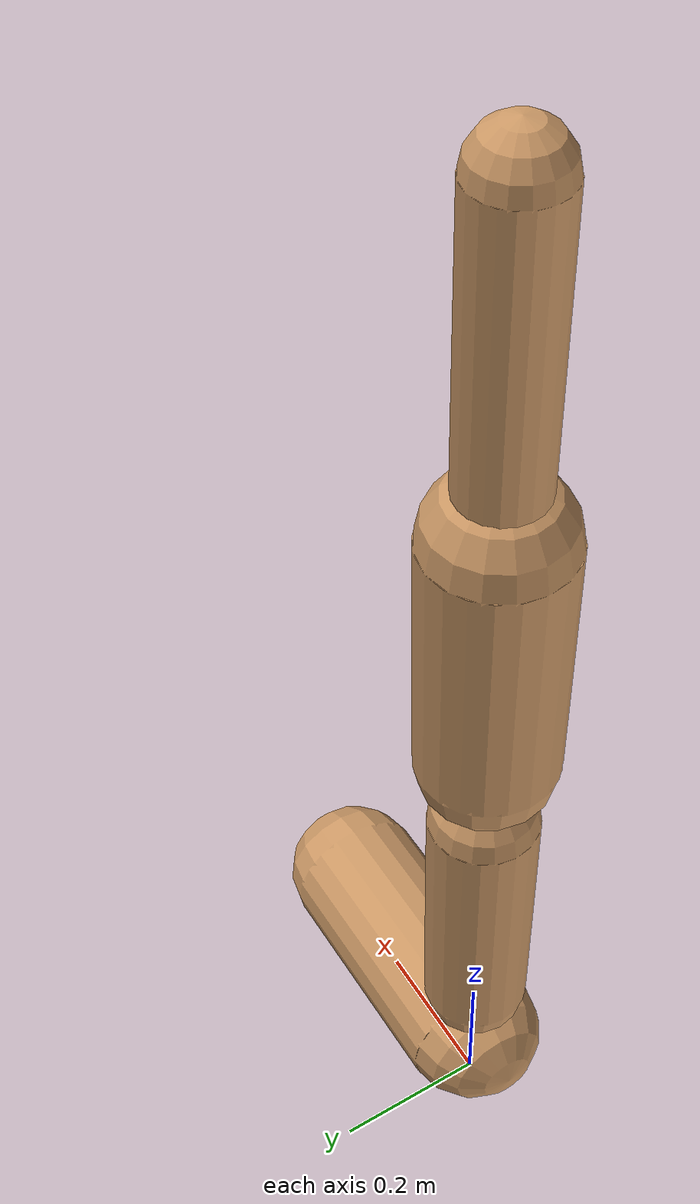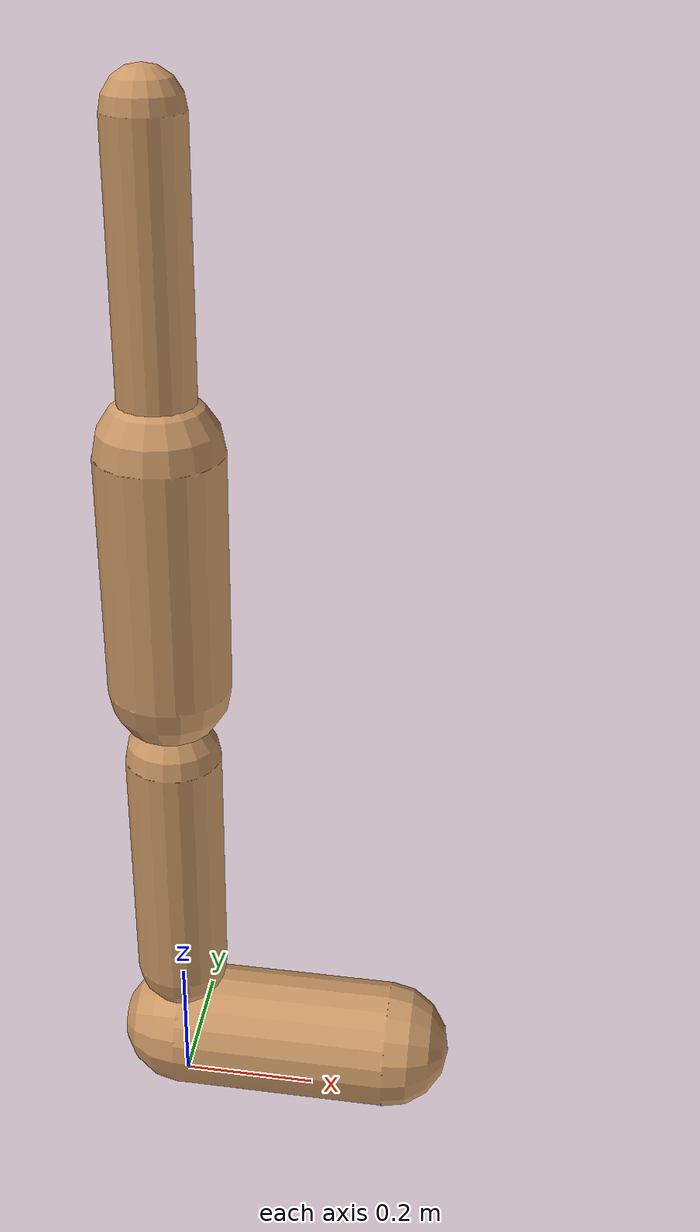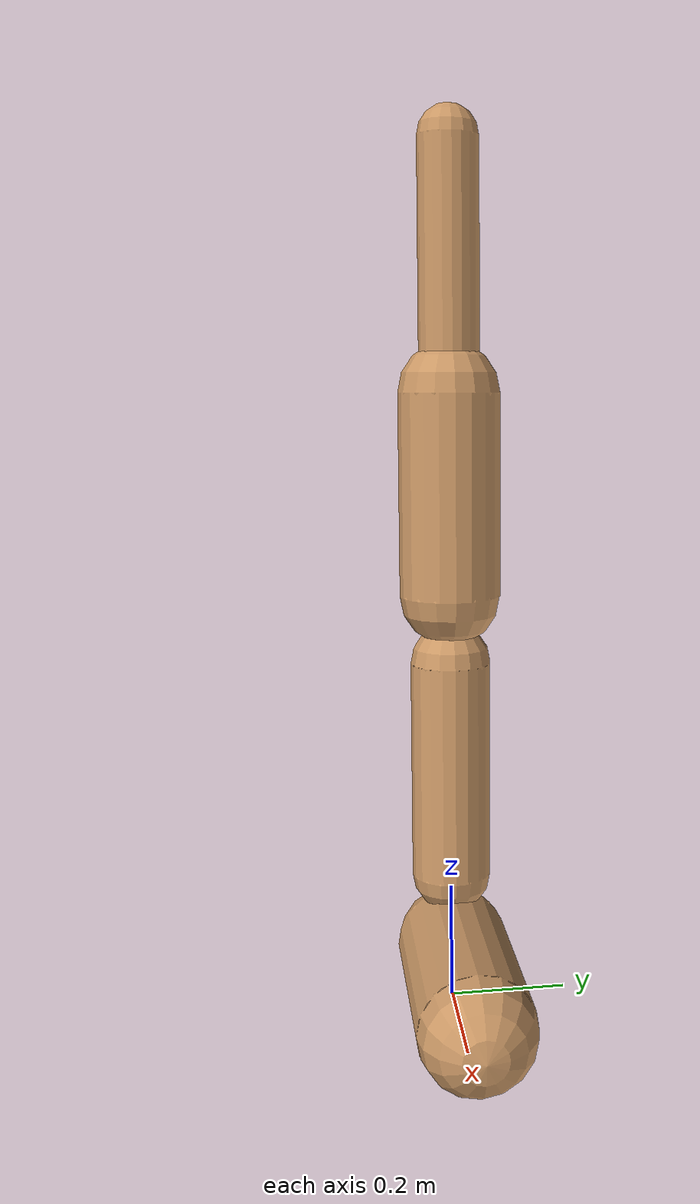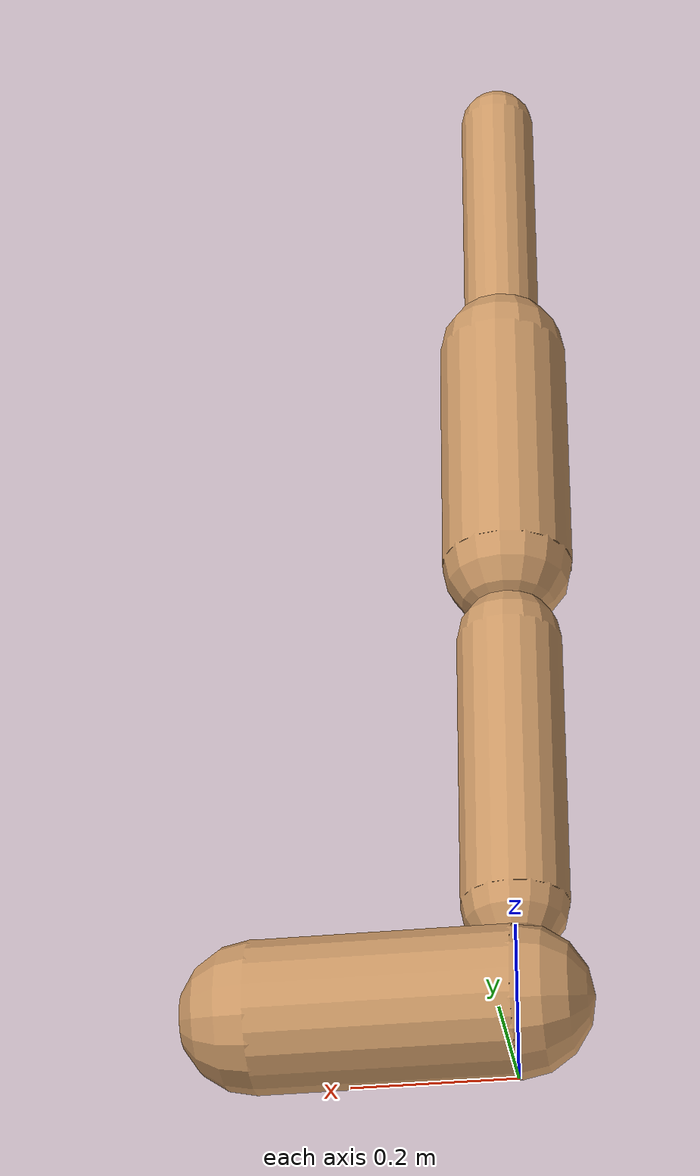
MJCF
<mujoco model="walker2d">
  <compiler angle="degree" coordinate="global" inertiafromgeom="true" />
  <default>
    <joint armature="0.01" damping=".1" limited="true" />
    <geom conaffinity="0" condim="3" contype="1" density="1000" friction="0.8 .1 .1" rgba="0.8 0.6 .4 1" />
  </default>
  <option integrator="RK4" timestep="0.002" />
  <worldbody>

    <body name="torso" pos="0 0 -0.24281318574606695">
      <joint armature="0" axis="1 0 0" damping="0" limited="false" name="ignorex" pos="0 0 0" stiffness="0" type="slide" />
      <joint armature="0" axis="0 0 1" damping="0" limited="false" name="ignorez" pos="0 0 0" ref="1.25" stiffness="0" type="slide" />
      <joint armature="0" axis="0 1 0" damping="0" limited="false" name="ignorey" pos="0 0 0" stiffness="0" type="hinge" />
      <geom fromto="0 0 1.45 0 0 1.05" name="torso_geom" size="0.05003610154844018" type="capsule" />
      <body name="thigh">
        <joint axis="0 -1 0" name="thigh_joint" pos="0 0 1.05" range="-150 0" type="hinge" />
        <geom fromto="0.0 0.0 1.05 0.0 0.0 0.7150167721955054" name="thigh_geom" size="0.0843026403691495" type="capsule" />
        <body name="leg" pos="0.0 0.0 0.11501677219550543">
          <joint axis="0 -1 0" name="leg_joint" pos="0 0 0.6" range="-150 0" type="hinge" />
          <geom fromto="0.0 0.0 0.6 0.0 0.0 0.22779641355056154" name="leg_geom" size="0.0674421122953196" type="capsule" />
          <body name="foot" pos="0.0 0.0 0.12779641355056154">
            <joint axis="0 -1 0" name="foot_joint" pos="0 0 0.1" range="-45 45" type="hinge" />
            <geom fromto="-0.0 0.0 0.1 0.31726429098682823 0.0 0.1" name="foot_geom" size="0.09358053090972782" type="capsule" />
          </body>
        </body>
      </body>

      <body name="thigh_left">
        <joint axis="0 -1 0" name="thigh_left_joint" pos="0 0 1.05" range="-150 0" type="hinge" />
        <geom fromto="0.0 0.0 1.05 0.0 0.0 0.7150167721955054" name="thigh_left_geom" rgba=".7 .3 .6 1" size="0.0843026403691495" type="capsule" />
        <body name="leg_left" pos="0.0 0.0 0.11501677219550543">
          <joint axis="0 -1 0" name="leg_left_joint" pos="0 0 0.6" range="-150 0" type="hinge" />
          <geom fromto="0.0 0.0 0.6 0.0 0.0 0.22779641355056154" name="leg_left_geom" rgba=".7 .3 .6 1" size="0.0674421122953196" type="capsule" />
          <body name="foot_left" pos="0.0 0.0 0.12779641355056154">
            <joint axis="0 -1 0" name="foot_left_joint" pos="0 0 0.1" range="-45 45" type="hinge" />
            <geom fromto="-0.0 0.0 0.1 0.31726429098682823 0.0 0.1" name="foot_left_geom" rgba=".7 .3 .6 1" size="0.09358053090972782" type="capsule" />
          </body>
        </body>
      </body>
    </body>
  </worldbody>
  <actuator>

    <motor ctrllimited="true" ctrlrange="-1.0 1.0" gear="100" joint="thigh_joint" />
    <motor ctrllimited="true" ctrlrange="-1.0 1.0" gear="100" joint="leg_joint" />
    <motor ctrllimited="true" ctrlrange="-1.0 1.0" gear="100" joint="foot_joint" />
    <motor ctrllimited="true" ctrlrange="-1.0 1.0" gear="100" joint="thigh_left_joint" />
    <motor ctrllimited="true" ctrlrange="-1.0 1.0" gear="100" joint="leg_left_joint" />
    <motor ctrllimited="true" ctrlrange="-1.0 1.0" gear="100" joint="foot_left_joint" />

  </actuator>
</mujoco>
